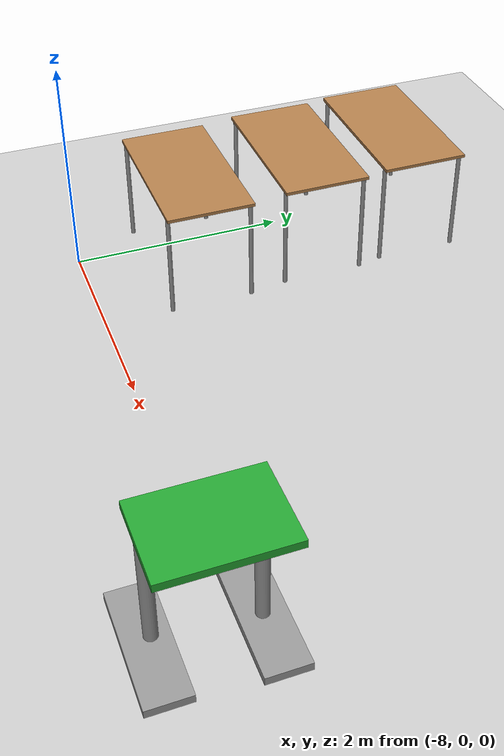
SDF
<sdf version="1.6">
 <world name="default">
  <model name="ground_plane">
   <static>1</static>
   <link name="link">
    <collision name="collision">
     <geometry><plane><normal>0 0 1</normal><size>100 100</size></plane></geometry>
     <surface>
      <contact><collide_bitmask>65535</collide_bitmask></contact>
      <friction><ode><mu>100</mu><mu2>50</mu2></ode></friction>
     </surface>
    </collision>
    <visual name="visual">
     <cast_shadows>0</cast_shadows>
     <geometry><plane><normal>0 0 1</normal><size>100 100</size></plane></geometry>
     <material>
      <script><uri>file://media/materials/scripts/gazebo.material</uri><name>Gazebo/Grey</name></script>
     </material>
    </visual>
   </link>
  </model>
  <model name="Humanoid">
   <link name="link_0">
    <pose>-0.00782 0.058578 0.612544 0 -0 0</pose>
    <inertial>
     <mass>0.0487032</mass>
     <inertia>
      <ixx>0.00407692</ixx>
      <ixy>0</ixy>
      <ixz>0</ixz>
      <iyy>0.00215077</iyy>
      <iyz>0</iyz>
      <izz>0.00619105</izz>
     </inertia>
    </inertial>
    <visual name="visual">
     <geometry><box><size>0.724854 1 0.067191</size></box></geometry>
     <material>
      <lighting>1</lighting>
      <script><uri>file://media/materials/scripts/gazebo.material</uri><name>Gazebo/Green</name></script>
      <shader type="pixel"/>
      <ambient>0 1 0 1</ambient>
      <diffuse>0 1 0 1</diffuse>
      <specular>0 1 0 1</specular>
      <emissive>0 1 0 1</emissive>
     </material>
    </visual>
    <collision name="collision">
     <geometry><box><size>0.724854 1 0.067191</size></box></geometry>
     <surface>
      <friction>
       <ode><mu>1</mu><mu2>1</mu2><fdir1>0 0 0</fdir1><slip1>0</slip1><slip2>0</slip2></ode>
       <torsional>
        <coefficient>1</coefficient>
        <patch_radius>0</patch_radius>
        <surface_radius>0</surface_radius>
        <use_patch_radius>1</use_patch_radius>
        <ode><slip>0</slip></ode>
       </torsional>
      </friction>
      <bounce><restitution_coefficient>0</restitution_coefficient><threshold>1e+06</threshold></bounce>
      <contact>
       <collide_without_contact>0</collide_without_contact>
       <collide_without_contact_bitmask>1</collide_without_contact_bitmask>
       <collide_bitmask>1</collide_bitmask>
       <ode>
        <soft_cfm>0</soft_cfm>
        <soft_erp>0.2</soft_erp>
        <kp>1e+13</kp>
        <kd>1</kd>
        <max_vel>0.01</max_vel>
        <min_depth>0</min_depth>
       </ode>
       <bullet>
        <split_impulse>1</split_impulse>
        <split_impulse_penetration_threshold>-0.01</split_impulse_penetration_threshold>
        <soft_cfm>0</soft_cfm>
        <soft_erp>0.2</soft_erp>
        <kp>1e+13</kp>
        <kd>1</kd>
       </bullet>
      </contact>
     </surface>
    </collision>
   </link>
   <link name="link_1">
    <pose>-0.00782 -0.422569 -0.385222 0 -0 0</pose>
    <inertial>
     <mass>0.0249491</mass>
     <inertia>
      <ixx>0.00026268</ixx>
      <ixy>0</ixy>
      <ixz>0</ixz>
      <iyy>0.00208977</iyy>
      <iyz>0</iyz>
      <izz>0.00233109</izz>
     </inertia>
    </inertial>
    <visual name="visual">
     <geometry><box><size>1 0.348151 0.071658</size></box></geometry>
     <material>
      <lighting>1</lighting>
      <script><uri>file://media/materials/scripts/gazebo.material</uri><name>Gazebo/Grey</name></script>
      <shader type="pixel"/>
      <ambient>0.3 0.3 0.3 1</ambient>
      <diffuse>0.7 0.7 0.7 1</diffuse>
      <specular>0.01 0.01 0.01 1</specular>
      <emissive>0 0 0 1</emissive>
     </material>
    </visual>
    <collision name="collision">
     <geometry><box><size>1 0.348151 0.071658</size></box></geometry>
     <surface>
      <friction>
       <ode><mu>1</mu><mu2>1</mu2><fdir1>0 0 0</fdir1><slip1>0</slip1><slip2>0</slip2></ode>
       <torsional>
        <coefficient>1</coefficient>
        <patch_radius>0</patch_radius>
        <surface_radius>0</surface_radius>
        <use_patch_radius>1</use_patch_radius>
        <ode><slip>0</slip></ode>
       </torsional>
      </friction>
      <bounce><restitution_coefficient>0</restitution_coefficient><threshold>1e+06</threshold></bounce>
      <contact>
       <collide_without_contact>0</collide_without_contact>
       <collide_without_contact_bitmask>1</collide_without_contact_bitmask>
       <collide_bitmask>1</collide_bitmask>
       <ode>
        <soft_cfm>0</soft_cfm>
        <soft_erp>0.2</soft_erp>
        <kp>1e+13</kp>
        <kd>1</kd>
        <max_vel>0.01</max_vel>
        <min_depth>0</min_depth>
       </ode>
       <bullet>
        <split_impulse>1</split_impulse>
        <split_impulse_penetration_threshold>-0.01</split_impulse_penetration_threshold>
        <soft_cfm>0</soft_cfm>
        <soft_erp>0.2</soft_erp>
        <kp>1e+13</kp>
        <kd>1</kd>
       </bullet>
      </contact>
     </surface>
    </collision>
   </link>
   <link name="link_1_clone">
    <pose>0.033496 0.376243 -0.385222 0 -0 0</pose>
    <inertial>
     <mass>0.0249491</mass>
     <inertia>
      <ixx>0.00026268</ixx>
      <ixy>0</ixy>
      <ixz>0</ixz>
      <iyy>0.00208977</iyy>
      <iyz>0</iyz>
      <izz>0.00233109</izz>
     </inertia>
    </inertial>
    <visual name="visual">
     <geometry><box><size>1 0.348151 0.071658</size></box></geometry>
     <material>
      <lighting>1</lighting>
      <script><uri>file://media/materials/scripts/gazebo.material</uri><name>Gazebo/Grey</name></script>
      <shader type="pixel"/>
      <ambient>0.3 0.3 0.3 1</ambient>
      <diffuse>0.7 0.7 0.7 1</diffuse>
      <specular>0.01 0.01 0.01 1</specular>
      <emissive>0 0 0 1</emissive>
     </material>
    </visual>
    <collision name="collision">
     <geometry><box><size>1 0.348151 0.071658</size></box></geometry>
     <surface>
      <friction>
       <ode><mu>1</mu><mu2>1</mu2><fdir1>0 0 0</fdir1><slip1>0</slip1><slip2>0</slip2></ode>
       <torsional>
        <coefficient>1</coefficient>
        <patch_radius>0</patch_radius>
        <surface_radius>0</surface_radius>
        <use_patch_radius>1</use_patch_radius>
        <ode><slip>0</slip></ode>
       </torsional>
      </friction>
      <bounce><restitution_coefficient>0</restitution_coefficient><threshold>1e+06</threshold></bounce>
      <contact>
       <collide_without_contact>0</collide_without_contact>
       <collide_without_contact_bitmask>1</collide_without_contact_bitmask>
       <collide_bitmask>1</collide_bitmask>
       <ode>
        <soft_cfm>0</soft_cfm>
        <soft_erp>0.2</soft_erp>
        <kp>1e+13</kp>
        <kd>1</kd>
        <max_vel>0.01</max_vel>
        <min_depth>0</min_depth>
       </ode>
       <bullet>
        <split_impulse>1</split_impulse>
        <split_impulse_penetration_threshold>-0.01</split_impulse_penetration_threshold>
        <soft_cfm>0</soft_cfm>
        <soft_erp>0.2</soft_erp>
        <kp>1e+13</kp>
        <kd>1</kd>
       </bullet>
      </contact>
     </surface>
    </collision>
   </link>
   <link name="link_2">
    <pose>-0.051356 -0.388494 0.078949 0 -0 0</pose>
    <inertial>
     <mass>0.0112059</mass>
     <inertia>
      <ixx>0.000941673</ixx>
      <ixy>0</ixy>
      <ixz>0</ixz>
      <iyy>0.000941673</iyy>
      <iyz>0</iyz>
      <izz>1.56964e-05</izz>
     </inertia>
    </inertial>
    <visual name="visual">
     <geometry><cylinder><radius>0.0529288</radius><length>1</length></cylinder></geometry>
     <material>
      <lighting>1</lighting>
      <script><uri>file://media/materials/scripts/gazebo.material</uri><name>Gazebo/Grey</name></script>
      <shader type="pixel"/>
      <ambient>0.3 0.3 0.3 1</ambient>
      <diffuse>0.7 0.7 0.7 1</diffuse>
      <specular>0.01 0.01 0.01 1</specular>
      <emissive>0 0 0 1</emissive>
     </material>
    </visual>
    <collision name="collision">
     <geometry><cylinder><radius>0.052929</radius><length>1</length></cylinder></geometry>
     <surface>
      <friction>
       <ode><mu>1</mu><mu2>1</mu2><fdir1>0 0 0</fdir1><slip1>0</slip1><slip2>0</slip2></ode>
       <torsional>
        <coefficient>1</coefficient>
        <patch_radius>0</patch_radius>
        <surface_radius>0</surface_radius>
        <use_patch_radius>1</use_patch_radius>
        <ode><slip>0</slip></ode>
       </torsional>
      </friction>
      <bounce><restitution_coefficient>0</restitution_coefficient><threshold>1e+06</threshold></bounce>
      <contact>
       <collide_without_contact>0</collide_without_contact>
       <collide_without_contact_bitmask>1</collide_without_contact_bitmask>
       <collide_bitmask>1</collide_bitmask>
       <ode>
        <soft_cfm>0</soft_cfm>
        <soft_erp>0.2</soft_erp>
        <kp>1e+13</kp>
        <kd>1</kd>
        <max_vel>0.01</max_vel>
        <min_depth>0</min_depth>
       </ode>
       <bullet>
        <split_impulse>1</split_impulse>
        <split_impulse_penetration_threshold>-0.01</split_impulse_penetration_threshold>
        <soft_cfm>0</soft_cfm>
        <soft_erp>0.2</soft_erp>
        <kp>1e+13</kp>
        <kd>1</kd>
       </bullet>
      </contact>
     </surface>
    </collision>
   </link>
   <link name="link_2_clone">
    <pose>0.033496 0.376243 0.078949 0 -0 0</pose>
    <inertial>
     <mass>0.0112059</mass>
     <inertia>
      <ixx>0.000941673</ixx>
      <ixy>0</ixy>
      <ixz>0</ixz>
      <iyy>0.000941673</iyy>
      <iyz>0</iyz>
      <izz>1.56964e-05</izz>
     </inertia>
    </inertial>
    <visual name="visual">
     <geometry><cylinder><radius>0.0529288</radius><length>1</length></cylinder></geometry>
     <material>
      <lighting>1</lighting>
      <script><uri>file://media/materials/scripts/gazebo.material</uri><name>Gazebo/Grey</name></script>
      <shader type="pixel"/>
      <ambient>0.3 0.3 0.3 1</ambient>
      <diffuse>0.7 0.7 0.7 1</diffuse>
      <specular>0.01 0.01 0.01 1</specular>
      <emissive>0 0 0 1</emissive>
     </material>
    </visual>
    <collision name="collision">
     <geometry><cylinder><radius>0.052929</radius><length>1</length></cylinder></geometry>
     <surface>
      <friction>
       <ode><mu>1</mu><mu2>1</mu2><fdir1>0 0 0</fdir1><slip1>0</slip1><slip2>0</slip2></ode>
       <torsional>
        <coefficient>1</coefficient>
        <patch_radius>0</patch_radius>
        <surface_radius>0</surface_radius>
        <use_patch_radius>1</use_patch_radius>
        <ode><slip>0</slip></ode>
       </torsional>
      </friction>
      <bounce><restitution_coefficient>0</restitution_coefficient><threshold>1e+06</threshold></bounce>
      <contact>
       <collide_without_contact>0</collide_without_contact>
       <collide_without_contact_bitmask>1</collide_without_contact_bitmask>
       <collide_bitmask>1</collide_bitmask>
       <ode>
        <soft_cfm>0</soft_cfm>
        <soft_erp>0.2</soft_erp>
        <kp>1e+13</kp>
        <kd>1</kd>
        <max_vel>0.01</max_vel>
        <min_depth>0</min_depth>
       </ode>
       <bullet>
        <split_impulse>1</split_impulse>
        <split_impulse_penetration_threshold>-0.01</split_impulse_penetration_threshold>
        <soft_cfm>0</soft_cfm>
        <soft_erp>0.2</soft_erp>
        <kp>1e+13</kp>
        <kd>1</kd>
       </bullet>
      </contact>
     </surface>
    </collision>
   </link>
   <joint name="link_1_JOINT_0" type="fixed">
    <parent>link_1</parent>
    <child>link_2</child>
    <physics>
     <ode><limit><cfm>0</cfm><erp>0.2</erp></limit><suspension><cfm>0</cfm><erp>0.2</erp></suspension></ode>
    </physics>
   </joint>
   <joint name="link_1_clone_JOINT_1" type="fixed">
    <parent>link_1_clone</parent>
    <child>link_2_clone</child>
    <physics>
     <ode><limit><cfm>0</cfm><erp>0.2</erp></limit><suspension><cfm>0</cfm><erp>0.2</erp></suspension></ode>
    </physics>
   </joint>
   <joint name="link_2_JOINT_2" type="fixed">
    <parent>link_2</parent>
    <child>link_0</child>
    <physics>
     <ode><limit><cfm>0</cfm><erp>0.2</erp></limit><suspension><cfm>0</cfm><erp>0.2</erp></suspension></ode>
    </physics>
   </joint>
   <joint name="link_2_clone_JOINT_3" type="fixed">
    <parent>link_2_clone</parent>
    <child>link_0</child>
    <physics>
     <ode><limit><cfm>0</cfm><erp>0.2</erp></limit><suspension><cfm>0</cfm><erp>0.2</erp></suspension></ode>
    </physics>
   </joint>
   <static>0</static>
   <pose>-3.45149 -0.182079 0.421051 0 -0 0.002815</pose>
  </model>
  <model name="table">
   <static>1</static>
   <link name="link">
    <collision name="surface">
     <pose>0 0 1 0 -0 0</pose>
     <geometry><box><size>1.5 0.8 0.03</size></box></geometry>
     <surface><friction><ode><mu>0.6</mu><mu2>0.6</mu2></ode></friction></surface>
    </collision>
    <visual name="visual1">
     <pose>0 0 1 0 -0 0</pose>
     <geometry><box><size>1.5 0.8 0.03</size></box></geometry>
     <material>
      <script><uri>file://media/materials/scripts/gazebo.material</uri><name>Gazebo/Wood</name></script>
     </material>
    </visual>
    <collision name="front_left_leg">
     <pose>0.68 0.38 0.5 0 -0 0</pose>
     <geometry><cylinder><radius>0.02</radius><length>1</length></cylinder></geometry>
    </collision>
    <visual name="front_left_leg">
     <pose>0.68 0.38 0.5 0 -0 0</pose>
     <geometry><cylinder><radius>0.02</radius><length>1</length></cylinder></geometry>
     <material>
      <script><uri>file://media/materials/scripts/gazebo.material</uri><name>Gazebo/Grey</name></script>
     </material>
    </visual>
    <collision name="front_right_leg">
     <pose>0.68 -0.38 0.5 0 -0 0</pose>
     <geometry><cylinder><radius>0.02</radius><length>1</length></cylinder></geometry>
    </collision>
    <visual name="front_right_leg">
     <pose>0.68 -0.38 0.5 0 -0 0</pose>
     <geometry><cylinder><radius>0.02</radius><length>1</length></cylinder></geometry>
     <material>
      <script><uri>file://media/materials/scripts/gazebo.material</uri><name>Gazebo/Grey</name></script>
     </material>
    </visual>
    <collision name="back_right_leg">
     <pose>-0.68 -0.38 0.5 0 -0 0</pose>
     <geometry><cylinder><radius>0.02</radius><length>1</length></cylinder></geometry>
    </collision>
    <visual name="back_right_leg">
     <pose>-0.68 -0.38 0.5 0 -0 0</pose>
     <geometry><cylinder><radius>0.02</radius><length>1</length></cylinder></geometry>
     <material>
      <script><uri>file://media/materials/scripts/gazebo.material</uri><name>Gazebo/Grey</name></script>
     </material>
    </visual>
    <collision name="back_left_leg">
     <pose>-0.68 0.38 0.5 0 -0 0</pose>
     <geometry><cylinder><radius>0.02</radius><length>1</length></cylinder></geometry>
    </collision>
    <visual name="back_left_leg">
     <pose>-0.68 0.38 0.5 0 -0 0</pose>
     <geometry><cylinder><radius>0.02</radius><length>1</length></cylinder></geometry>
     <material>
      <script><uri>file://media/materials/scripts/gazebo.material</uri><name>Gazebo/Grey</name></script>
     </material>
    </visual>
   </link>
   <pose>-7.73864 3.1171 0 0 -0 0</pose>
  </model>
  <model name="table_clone">
   <static>1</static>
   <link name="link">
    <collision name="surface">
     <pose>0 0 1 0 -0 0</pose>
     <geometry><box><size>1.5 0.8 0.03</size></box></geometry>
     <surface><friction><ode><mu>0.6</mu><mu2>0.6</mu2></ode></friction></surface>
    </collision>
    <visual name="visual1">
     <pose>0 0 1 0 -0 0</pose>
     <geometry><box><size>1.5 0.8 0.03</size></box></geometry>
     <material>
      <script><uri>file://media/materials/scripts/gazebo.material</uri><name>Gazebo/Wood</name></script>
     </material>
    </visual>
    <collision name="front_left_leg">
     <pose>0.68 0.38 0.5 0 -0 0</pose>
     <geometry><cylinder><radius>0.02</radius><length>1</length></cylinder></geometry>
    </collision>
    <visual name="front_left_leg">
     <pose>0.68 0.38 0.5 0 -0 0</pose>
     <geometry><cylinder><radius>0.02</radius><length>1</length></cylinder></geometry>
     <material>
      <script><uri>file://media/materials/scripts/gazebo.material</uri><name>Gazebo/Grey</name></script>
     </material>
    </visual>
    <collision name="front_right_leg">
     <pose>0.68 -0.38 0.5 0 -0 0</pose>
     <geometry><cylinder><radius>0.02</radius><length>1</length></cylinder></geometry>
    </collision>
    <visual name="front_right_leg">
     <pose>0.68 -0.38 0.5 0 -0 0</pose>
     <geometry><cylinder><radius>0.02</radius><length>1</length></cylinder></geometry>
     <material>
      <script><uri>file://media/materials/scripts/gazebo.material</uri><name>Gazebo/Grey</name></script>
     </material>
    </visual>
    <collision name="back_right_leg">
     <pose>-0.68 -0.38 0.5 0 -0 0</pose>
     <geometry><cylinder><radius>0.02</radius><length>1</length></cylinder></geometry>
    </collision>
    <visual name="back_right_leg">
     <pose>-0.68 -0.38 0.5 0 -0 0</pose>
     <geometry><cylinder><radius>0.02</radius><length>1</length></cylinder></geometry>
     <material>
      <script><uri>file://media/materials/scripts/gazebo.material</uri><name>Gazebo/Grey</name></script>
     </material>
    </visual>
    <collision name="back_left_leg">
     <pose>-0.68 0.38 0.5 0 -0 0</pose>
     <geometry><cylinder><radius>0.02</radius><length>1</length></cylinder></geometry>
    </collision>
    <visual name="back_left_leg">
     <pose>-0.68 0.38 0.5 0 -0 0</pose>
     <geometry><cylinder><radius>0.02</radius><length>1</length></cylinder></geometry>
     <material>
      <script><uri>file://media/materials/scripts/gazebo.material</uri><name>Gazebo/Grey</name></script>
     </material>
    </visual>
   </link>
   <pose>-7.68863 2.12279 0 0 -0 0</pose>
  </model>
  <model name="table_clone_0">
   <static>1</static>
   <link name="link">
    <collision name="surface">
     <pose>0 0 1 0 -0 0</pose>
     <geometry><box><size>1.5 0.8 0.03</size></box></geometry>
     <surface><friction><ode><mu>0.6</mu><mu2>0.6</mu2></ode></friction></surface>
    </collision>
    <visual name="visual1">
     <pose>0 0 1 0 -0 0</pose>
     <geometry><box><size>1.5 0.8 0.03</size></box></geometry>
     <material>
      <script><uri>file://media/materials/scripts/gazebo.material</uri><name>Gazebo/Wood</name></script>
     </material>
    </visual>
    <collision name="front_left_leg">
     <pose>0.68 0.38 0.5 0 -0 0</pose>
     <geometry><cylinder><radius>0.02</radius><length>1</length></cylinder></geometry>
    </collision>
    <visual name="front_left_leg">
     <pose>0.68 0.38 0.5 0 -0 0</pose>
     <geometry><cylinder><radius>0.02</radius><length>1</length></cylinder></geometry>
     <material>
      <script><uri>file://media/materials/scripts/gazebo.material</uri><name>Gazebo/Grey</name></script>
     </material>
    </visual>
    <collision name="front_right_leg">
     <pose>0.68 -0.38 0.5 0 -0 0</pose>
     <geometry><cylinder><radius>0.02</radius><length>1</length></cylinder></geometry>
    </collision>
    <visual name="front_right_leg">
     <pose>0.68 -0.38 0.5 0 -0 0</pose>
     <geometry><cylinder><radius>0.02</radius><length>1</length></cylinder></geometry>
     <material>
      <script><uri>file://media/materials/scripts/gazebo.material</uri><name>Gazebo/Grey</name></script>
     </material>
    </visual>
    <collision name="back_right_leg">
     <pose>-0.68 -0.38 0.5 0 -0 0</pose>
     <geometry><cylinder><radius>0.02</radius><length>1</length></cylinder></geometry>
    </collision>
    <visual name="back_right_leg">
     <pose>-0.68 -0.38 0.5 0 -0 0</pose>
     <geometry><cylinder><radius>0.02</radius><length>1</length></cylinder></geometry>
     <material>
      <script><uri>file://media/materials/scripts/gazebo.material</uri><name>Gazebo/Grey</name></script>
     </material>
    </visual>
    <collision name="back_left_leg">
     <pose>-0.68 0.38 0.5 0 -0 0</pose>
     <geometry><cylinder><radius>0.02</radius><length>1</length></cylinder></geometry>
    </collision>
    <visual name="back_left_leg">
     <pose>-0.68 0.38 0.5 0 -0 0</pose>
     <geometry><cylinder><radius>0.02</radius><length>1</length></cylinder></geometry>
     <material>
      <script><uri>file://media/materials/scripts/gazebo.material</uri><name>Gazebo/Grey</name></script>
     </material>
    </visual>
   </link>
   <pose>-7.62669 1.00622 0 0 -0 0</pose>
  </model>
 </world>
</sdf>
